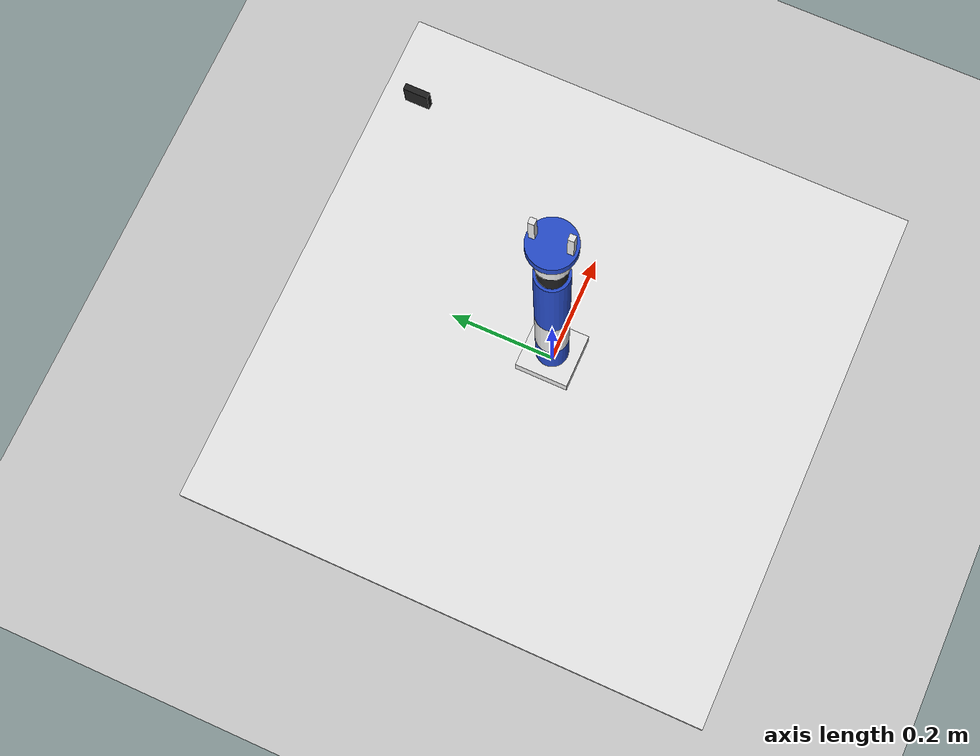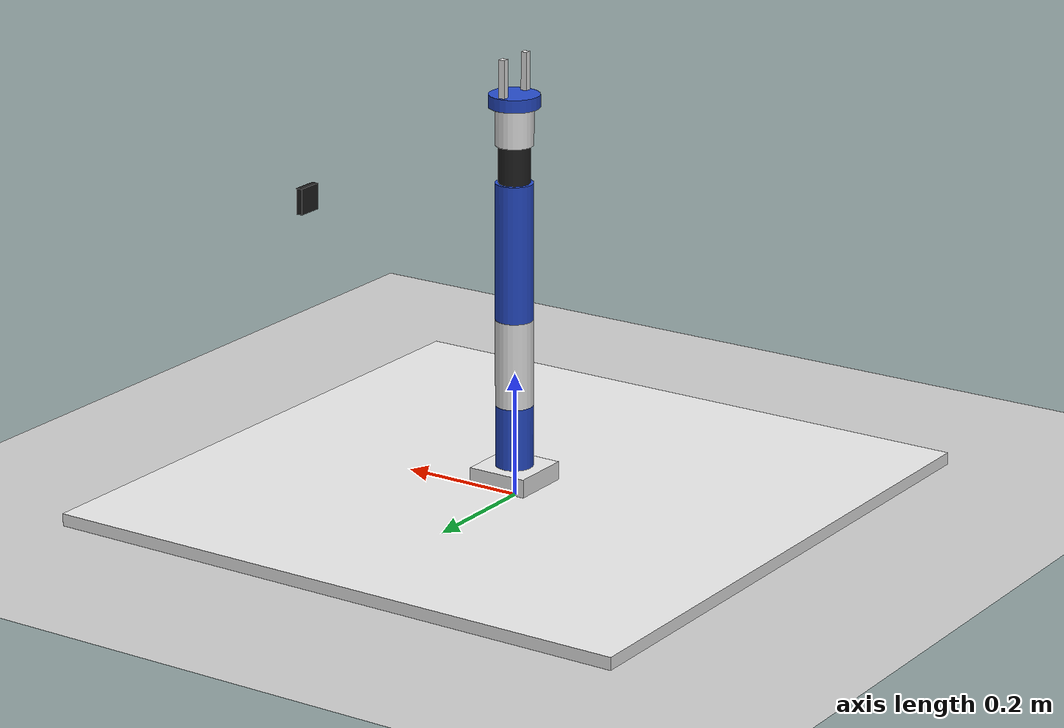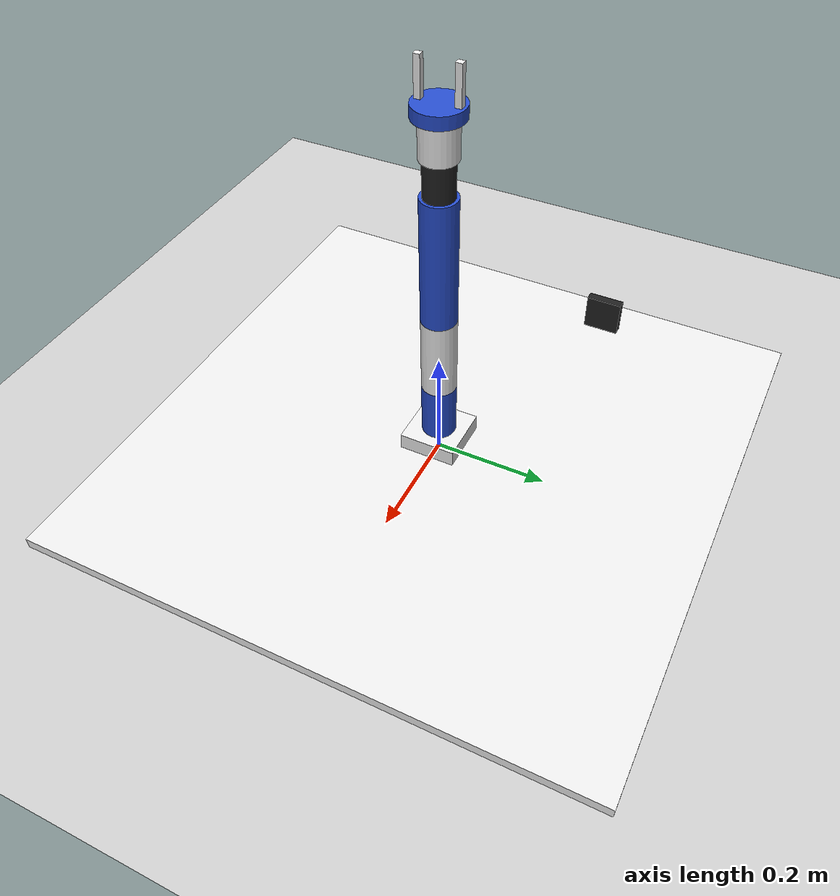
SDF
<sdf version="1.7">
 <world name="default">
  <light name="sun" type="directional">
   <pose>0 0 10 0 -0 0</pose>
   <diffuse>0.8 0.8 0.8 1</diffuse>
   <specular>0.2 0.2 0.2 1</specular>
   <attenuation>
    <range>1000</range>
    <constant>0.9</constant>
    <linear>0.01</linear>
    <quadratic>0.001</quadratic>
   </attenuation>
   <direction>-0.5 0.1 -0.9</direction>
   <spot><inner_angle>0</inner_angle><outer_angle>0</outer_angle><falloff>0</falloff></spot>
  </light>
  <model name="ground_plane">
   <static>1</static>
   <link name="link">
    <collision name="collision">
     <geometry><plane><normal>0 0 1</normal><size>100 100</size></plane></geometry>
     <surface>
      <contact><collide_bitmask>65535</collide_bitmask></contact>
      <friction><ode><mu>100</mu><mu2>50</mu2></ode></friction>
     </surface>
    </collision>
    <visual name="visual">
     <cast_shadows>0</cast_shadows>
     <geometry><plane><normal>0 0 1</normal><size>100 100</size></plane></geometry>
     <material>
      <script><uri>file://media/materials/scripts/gazebo.material</uri><name>Gazebo/Grey</name></script>
     </material>
    </visual>
   </link>
  </model>
  <gravity>0 0 -9.8</gravity>
  <magnetic_field>6e-06 2.3e-05 -4.2e-05</magnetic_field>
  <atmosphere type="adiabatic"/>
  <physics type="ode">
   <max_step_size>0.001</max_step_size>
   <real_time_factor>1</real_time_factor>
   <real_time_update_rate>1000</real_time_update_rate>
  </physics>
  <scene><ambient>0.4 0.4 0.4 1</ambient><background>0.7 0.7 0.7 1</background><shadows>1</shadows></scene>
  <spherical_coordinates>
   <surface_model>EARTH_WGS84</surface_model>
   <latitude_deg>0</latitude_deg>
   <longitude_deg>0</longitude_deg>
   <elevation>0</elevation>
   <heading_deg>0</heading_deg>
  </spherical_coordinates>
  <model name="arm">
   <link name="base_link">
    <inertial>
     <pose>3.4e-05 6e-05 0.0001 0 -0 0</pose>
     <mass>500.1</mass>
     <inertia>
      <ixx>1.04399</ixx>
      <ixy>-0.00509898</ixy>
      <ixz>-0.0084983</ixz>
      <iyy>0.537884</iyy>
      <iyz>-0.014997</iyz>
      <izz>1.02189</izz>
     </inertia>
    </inertial>
    <collision name="base_link_collision"><geometry><box><size>0.1 0.1 0.04</size></box></geometry></collision>
    <collision name="base_link_fixed_joint_lump__bottom_link_collision_1">
     <pose>0 0 -0.02 0 -0 0</pose>
     <geometry><box><size>1 1 0.02</size></box></geometry>
    </collision>
    <collision name="base_link_fixed_joint_lump__camera_link_collision_2">
     <pose>0.17 0.3 0.5 0 -0 0</pose>
     <geometry><box><size>0.01 0.04 0.04</size></box></geometry>
    </collision>
    <visual name="base_link_visual">
     <geometry><box><size>0.1 0.1 0.04</size></box></geometry>
     <material>
      <script><name>Gazebo/White</name><uri>file://media/materials/scripts/gazebo.material</uri></script>
     </material>
    </visual>
    <visual name="base_link_fixed_joint_lump__bottom_link_visual_1">
     <pose>0 0 -0.02 0 -0 0</pose>
     <geometry><box><size>1 1 0.02</size></box></geometry>
     <material>
      <script><name>Gazebo/White</name><uri>file://media/materials/scripts/gazebo.material</uri></script>
     </material>
    </visual>
    <visual name="base_link_fixed_joint_lump__camera_link_visual_2">
     <pose>0.17 0.3 0.5 0 -0 0</pose>
     <geometry><box><size>0.01 0.04 0.04</size></box></geometry>
     <material>
      <script><name>Gazebo/Black</name><uri>file://media/materials/scripts/gazebo.material</uri></script>
     </material>
    </visual>
    <sensor name="camera_node" type="camera">
     <update_rate>30</update_rate>
     <camera name="head">
      <horizontal_fov>1.39626</horizontal_fov>
      <image><width>1280</width><height>720</height><format>R8G8B8</format></image>
      <clip><near>0.02</near><far>300</far></clip>
      <noise><type>gaussian</type><mean>0</mean><stddev>0.007</stddev></noise>
     </camera>
     <plugin name="gazebo_camera" filename="libgazebo_ros_camera.so">
      <alwaysOn>1</alwaysOn>
      <updateRate>0.0</updateRate>
      <cameraName>/camera</cameraName>
      <imageTopicName>image_raw</imageTopicName>
      <cameraInfoTopicName>camera_info</cameraInfoTopicName>
      <frameName>camera_link</frameName>
      <hackBaseline>0.07</hackBaseline>
      <distortionK1>0.0</distortionK1>
      <distortionK2>0.0</distortionK2>
      <distortionK3>0.0</distortionK3>
      <distortionT1>0.0</distortionT1>
      <distortionT2>0.0</distortionT2>
      <robotNamespace>/</robotNamespace>
     </plugin>
     <pose>0.17 0.3 0.5 0 -0 0</pose>
    </sensor>
   </link>
   <joint name="joint1" type="revolute">
    <pose relative_to="base_link">0 0 0.02 0 1.57079 0</pose>
    <parent>base_link</parent>
    <child>link1</child>
    <axis>
     <xyz>-1 0 0</xyz>
     <limit><lower>-2.96</lower><upper>2.96</upper><effort>300</effort><velocity>1</velocity></limit>
     <dynamics>
      <damping>50</damping>
      <friction>1</friction>
      <spring_reference>0</spring_reference>
      <spring_stiffness>0</spring_stiffness>
     </dynamics>
    </axis>
   </joint>
   <link name="link1">
    <pose relative_to="joint1">0 0 0 0 -0 0</pose>
    <inertial>
     <mass>1</mass>
     <inertia><ixx>1</ixx><ixy>0</ixy><ixz>0</ixz><iyy>0.5</iyy><iyz>0</iyz><izz>1</izz></inertia>
    </inertial>
    <collision name="link1_collision">
     <pose>-0.05 0 0 3.14159 1.57079 3.14159</pose>
     <geometry><cylinder><length>0.1</length><radius>0.03</radius></cylinder></geometry>
    </collision>
    <visual name="link1_visual">
     <pose>-0.05 0 0 3.14159 1.57079 3.14159</pose>
     <geometry><cylinder><length>0.1</length><radius>0.03</radius></cylinder></geometry>
     <material>
      <script><name>Gazebo/Blue</name><uri>file://media/materials/scripts/gazebo.material</uri></script>
     </material>
    </visual>
   </link>
   <joint name="joint2" type="revolute">
    <pose relative_to="link1">-0.1 0 0 -1.57079 -0 1.57079</pose>
    <parent>link1</parent>
    <child>link2</child>
    <axis>
     <xyz>1 0 0</xyz>
     <limit><lower>-2.35</lower><upper>2.35</upper><effort>300</effort><velocity>1</velocity></limit>
     <dynamics>
      <damping>50</damping>
      <friction>1</friction>
      <spring_reference>0</spring_reference>
      <spring_stiffness>0</spring_stiffness>
     </dynamics>
    </axis>
   </joint>
   <link name="link2">
    <pose relative_to="joint2">0 0 0 0 -0 0</pose>
    <inertial>
     <mass>1</mass>
     <inertia><ixx>1</ixx><ixy>0</ixy><ixz>0</ixz><iyy>0.5</iyy><iyz>0</iyz><izz>1</izz></inertia>
    </inertial>
    <collision name="link2_collision">
     <pose>0 0 0.07 0 -0 0</pose>
     <geometry><cylinder><length>0.14</length><radius>0.03</radius></cylinder></geometry>
    </collision>
    <visual name="link2_visual">
     <pose>0 0 0.07 0 -0 0</pose>
     <geometry><cylinder><length>0.14</length><radius>0.03</radius></cylinder></geometry>
     <material>
      <script><name>Gazebo/White</name><uri>file://media/materials/scripts/gazebo.material</uri></script>
     </material>
    </visual>
   </link>
   <joint name="joint3" type="revolute">
    <pose relative_to="link2">0 0 0.14 3.14159 3e-06 3.14159</pose>
    <parent>link2</parent>
    <child>link3</child>
    <axis>
     <xyz>-1 0 0</xyz>
     <limit><lower>-2.62</lower><upper>2.62</upper><effort>300</effort><velocity>1</velocity></limit>
     <dynamics>
      <damping>50</damping>
      <friction>1</friction>
      <spring_reference>0</spring_reference>
      <spring_stiffness>0</spring_stiffness>
     </dynamics>
    </axis>
   </joint>
   <link name="link3">
    <pose relative_to="joint3">0 0 0 0 -0 0</pose>
    <inertial>
     <mass>1</mass>
     <inertia><ixx>1</ixx><ixy>0</ixy><ixz>0</ixz><iyy>0.5</iyy><iyz>0</iyz><izz>1</izz></inertia>
    </inertial>
    <collision name="link3_collision">
     <pose>0 0 -0.11 0 -0 0</pose>
     <geometry><cylinder><length>0.22</length><radius>0.03</radius></cylinder></geometry>
    </collision>
    <visual name="link3_visual">
     <pose>0 0 -0.11 0 -0 0</pose>
     <geometry><cylinder><length>0.22</length><radius>0.03</radius></cylinder></geometry>
     <material>
      <script><name>Gazebo/Blue</name><uri>file://media/materials/scripts/gazebo.material</uri></script>
     </material>
    </visual>
   </link>
   <joint name="joint4" type="revolute">
    <pose relative_to="link3">0 0 -0.22 0 1.57079 3.14159</pose>
    <parent>link3</parent>
    <child>link4</child>
    <axis>
     <xyz>1 0 0</xyz>
     <limit><lower>-2.62</lower><upper>2.62</upper><effort>300</effort><velocity>1</velocity></limit>
     <dynamics>
      <damping>50</damping>
      <friction>1</friction>
      <spring_reference>0</spring_reference>
      <spring_stiffness>0</spring_stiffness>
     </dynamics>
    </axis>
   </joint>
   <link name="link4">
    <pose relative_to="joint4">0 0 0 0 -0 0</pose>
    <inertial>
     <mass>1</mass>
     <inertia><ixx>1</ixx><ixy>0</ixy><ixz>0</ixz><iyy>0.5</iyy><iyz>0</iyz><izz>1</izz></inertia>
    </inertial>
    <collision name="link4_collision">
     <pose>0.03 0 0 3.14159 1.57079 3.14159</pose>
     <geometry><cylinder><length>0.06</length><radius>0.025</radius></cylinder></geometry>
    </collision>
    <visual name="link4_visual">
     <pose>0.03 0 0 3.14159 1.57079 3.14159</pose>
     <geometry><cylinder><length>0.06</length><radius>0.025</radius></cylinder></geometry>
     <material>
      <script><name>Gazebo/Black</name><uri>file://media/materials/scripts/gazebo.material</uri></script>
     </material>
    </visual>
   </link>
   <joint name="joint5" type="revolute">
    <pose relative_to="link4">0.06 0 0 0 1.57079 0</pose>
    <parent>link4</parent>
    <child>link5</child>
    <axis>
     <xyz>1 0 0</xyz>
     <limit><lower>-2.62</lower><upper>2.62</upper><effort>300</effort><velocity>1</velocity></limit>
     <dynamics>
      <damping>50</damping>
      <friction>1</friction>
      <spring_reference>0</spring_reference>
      <spring_stiffness>0</spring_stiffness>
     </dynamics>
    </axis>
   </joint>
   <link name="link5">
    <pose relative_to="joint5">0 0 0 0 -0 0</pose>
    <inertial>
     <mass>1</mass>
     <inertia><ixx>1</ixx><ixy>0</ixy><ixz>0</ixz><iyy>0.5</iyy><iyz>0</iyz><izz>1</izz></inertia>
    </inertial>
    <collision name="link5_collision">
     <pose>0 0 0.03 0 -0 0</pose>
     <geometry><cylinder><length>0.06</length><radius>0.03</radius></cylinder></geometry>
    </collision>
    <visual name="link5_visual">
     <pose>0 0 0.03 0 -0 0</pose>
     <geometry><cylinder><length>0.06</length><radius>0.03</radius></cylinder></geometry>
     <material>
      <script><name>Gazebo/White</name><uri>file://media/materials/scripts/gazebo.material</uri></script>
     </material>
    </visual>
   </link>
   <joint name="joint6" type="revolute">
    <pose relative_to="link5">0 0 0.06 -1.5708 -1.57079 0</pose>
    <parent>link5</parent>
    <child>link6</child>
    <axis>
     <xyz>1 0 0</xyz>
     <limit><lower>-6.28</lower><upper>6.28</upper><effort>300</effort><velocity>1</velocity></limit>
     <dynamics>
      <damping>50</damping>
      <friction>1</friction>
      <spring_reference>0</spring_reference>
      <spring_stiffness>0</spring_stiffness>
     </dynamics>
    </axis>
   </joint>
   <link name="link6">
    <pose relative_to="joint6">0 0 0 0 -0 0</pose>
    <inertial>
     <mass>2</mass>
     <inertia><ixx>2</ixx><ixy>0</ixy><ixz>0</ixz><iyy>1</iyy><iyz>0</iyz><izz>2</izz></inertia>
    </inertial>
    <collision name="link6_collision">
     <pose>0.01 0 0 3.14159 1.57079 3.14159</pose>
     <geometry><cylinder><length>0.02</length><radius>0.04</radius></cylinder></geometry>
    </collision>
    <visual name="link6_visual">
     <pose>0.01 0 0 3.14159 1.57079 3.14159</pose>
     <geometry><cylinder><length>0.02</length><radius>0.04</radius></cylinder></geometry>
     <material>
      <script><name>Gazebo/Blue</name><uri>file://media/materials/scripts/gazebo.material</uri></script>
     </material>
    </visual>
    <visual name="link6_fixed_joint_lump__gripper_finger_link2_visual_1">
     <pose>0.04 0.03 0 0 -0 0</pose>
     <geometry><box><size>0.08 0.01 0.01</size></box></geometry>
     <material>
      <script><name>Gazebo/White</name><uri>file://media/materials/scripts/gazebo.material</uri></script>
     </material>
    </visual>
   </link>
   <joint name="finger_joint1" type="prismatic">
    <pose relative_to="link6">0 0 0 0 -0 0</pose>
    <parent>link6</parent>
    <child>gripper_finger_link1</child>
    <axis>
     <xyz>0 1 0</xyz>
     <limit><lower>0</lower><upper>0.06</upper><effort>100</effort><velocity>1</velocity></limit>
     <dynamics>
      <damping>50</damping>
      <friction>1</friction>
      <spring_reference>0</spring_reference>
      <spring_stiffness>0</spring_stiffness>
     </dynamics>
    </axis>
   </joint>
   <link name="gripper_finger_link1">
    <pose relative_to="finger_joint1">0 0 0 0 -0 0</pose>
    <inertial>
     <mass>1</mass>
     <inertia><ixx>1</ixx><ixy>0</ixy><ixz>0</ixz><iyy>0.5</iyy><iyz>0</iyz><izz>1</izz></inertia>
    </inertial>
    <visual name="gripper_finger_link1_visual">
     <pose>0.04 -0.03 0 0 -0 0</pose>
     <geometry><box><size>0.08 0.01 0.01</size></box></geometry>
     <material>
      <script><name>Gazebo/White</name><uri>file://media/materials/scripts/gazebo.material</uri></script>
     </material>
    </visual>
   </link>
   <static>0</static>
   <plugin name="gazebo_ros_control" filename="libgazebo_ros_control.so">
    <robotNamespace>/arm</robotNamespace>
   </plugin>
   <pose>0.000979 0.000702 0.029987 -2.5e-05 -1e-06 -0.003582</pose>
  </model>
 </world>
</sdf>
